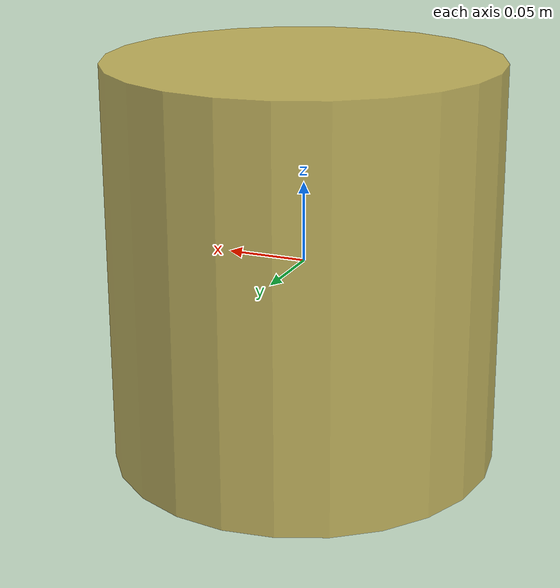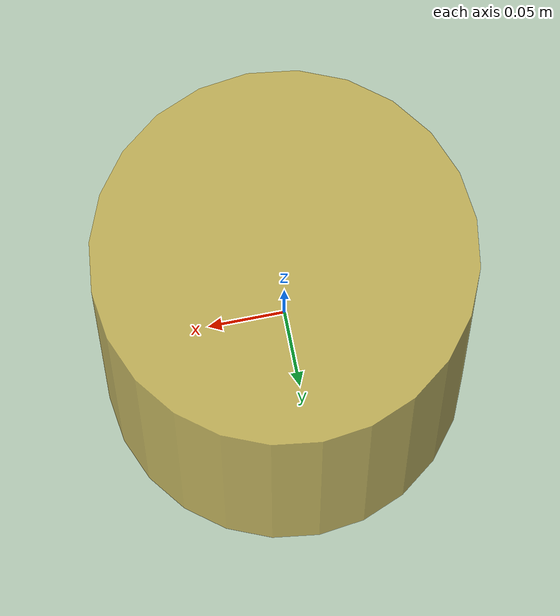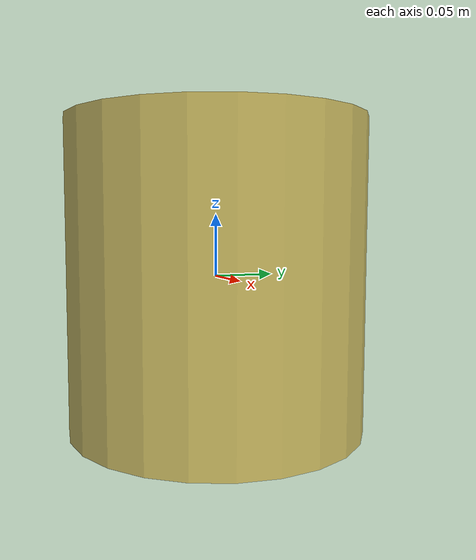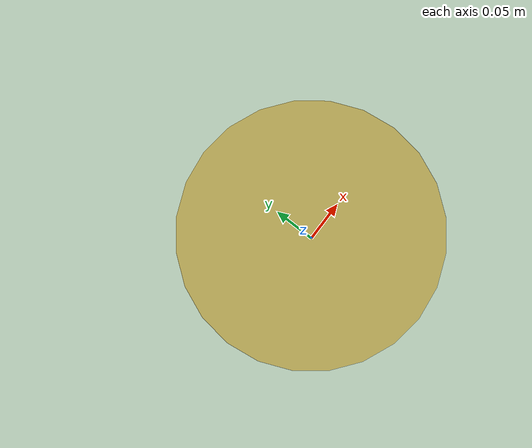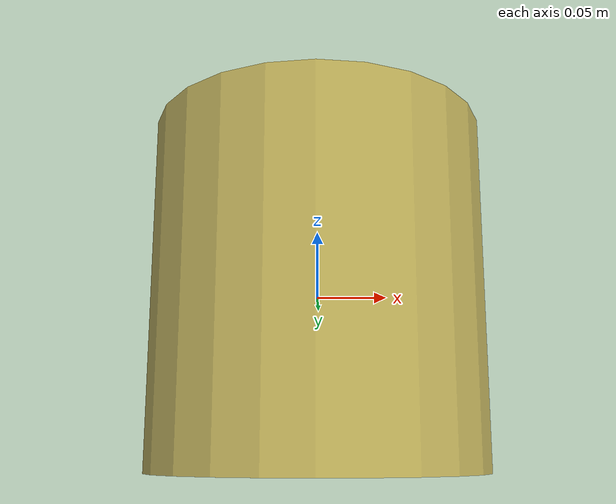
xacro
<?xml version="1.0"?>
<robot xmlns:xacro="http://www.ros.org/wiki/xacro" name="topple_cylinder">
<xacro:property name="m" value="1.0" />
<xacro:property name="l" value="0.25" />
<xacro:property name="r" value="0.12" />

  <link name="base_link">
    <contact>
      <lateral_friction value="0.5"/>
      <spinning_friction value=".01"/>
      <rolling_friction value=".1"/>
    </contact>
    <inertial>
      <origin rpy="0 0 0" xyz="0 0 0"/>
      <mass value="${m}"/>
      <inertia ixx="1" ixy="0" ixz="0" iyy="1" iyz="0" izz="1"/>
    </inertial>
    <visual>
      <origin rpy="0 0 0" xyz="0.0 0.0 0.0"/>
      <geometry>
        <cylinder radius="${r}" length="${l}"/>
      </geometry>
      <material name="blockmat">
        <color rgba="0.8 0.7 0.3 0.8"/>
      </material>
    </visual>
    <collision>
      <origin rpy="0 0 0" xyz="0.0 0.0 0.0"/>
      <geometry>
        <cylinder radius="${r}" length="${l}"/>
      </geometry>
    </collision>
 </link>

</robot>
